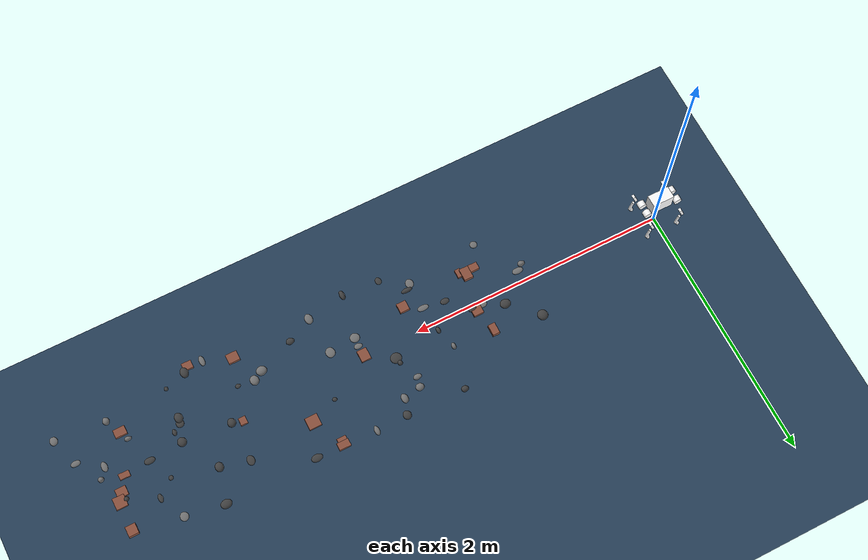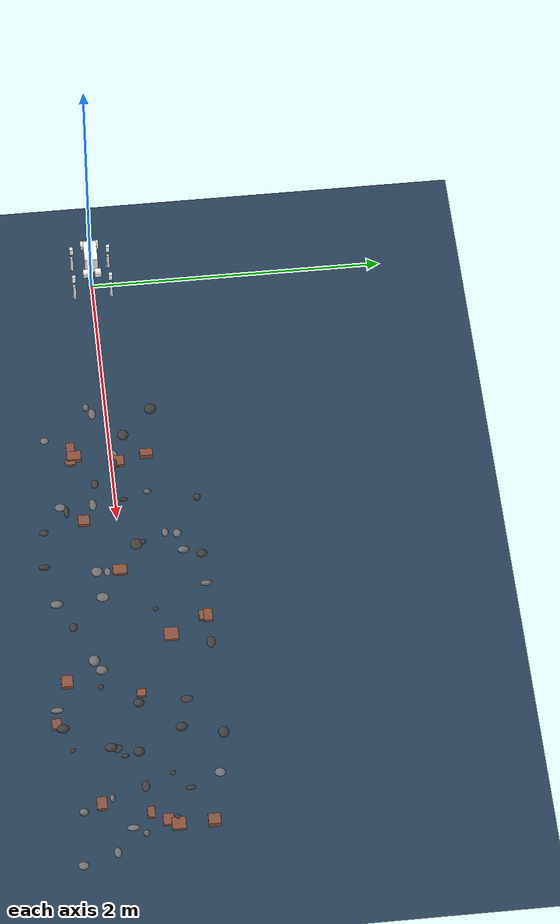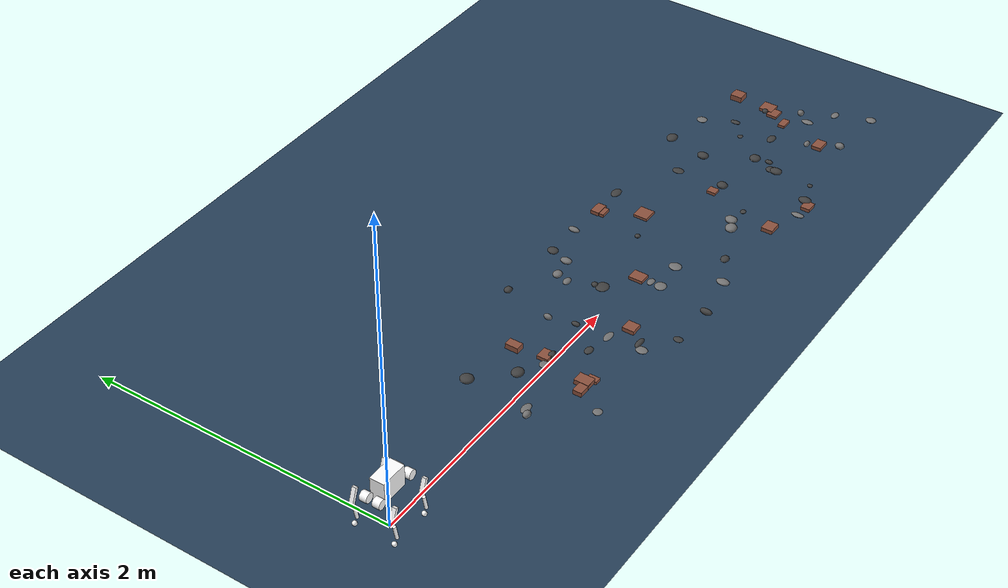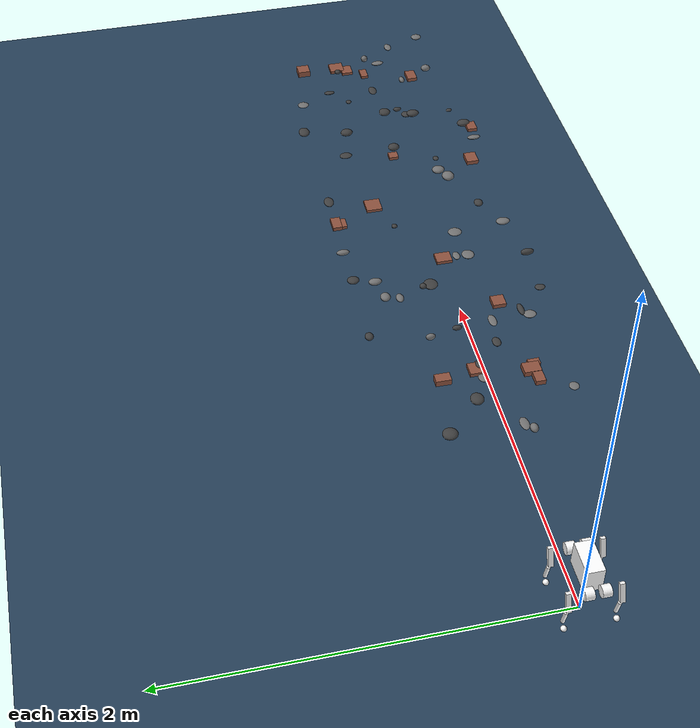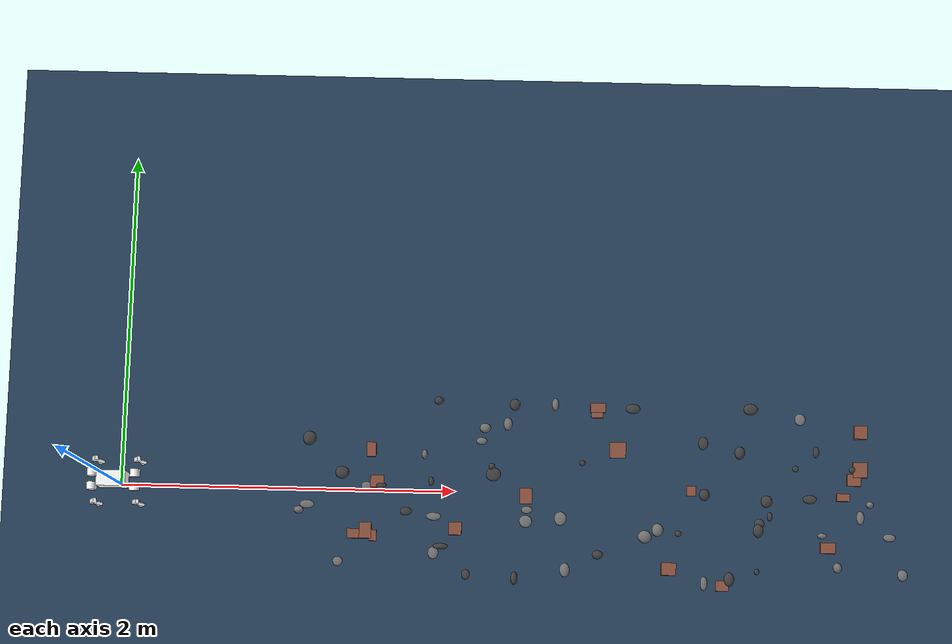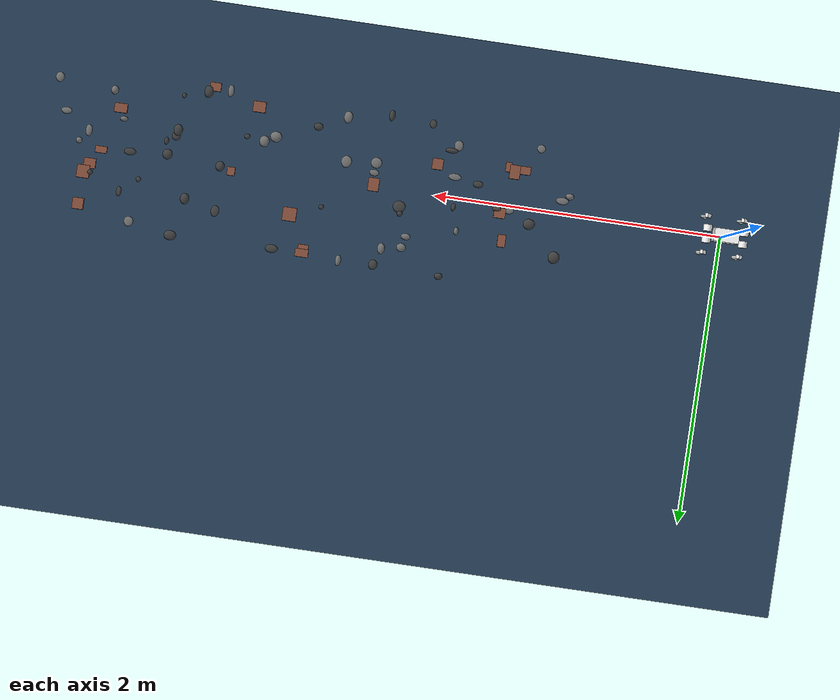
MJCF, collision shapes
<mujoco model="htdw_4438 scene debris stones">
  <include file="htdw_4438.xml"/>

  <statistic center="0 0 0.1" extent="0.8"/>

  <visual>
    <headlight diffuse="0.6 0.6 0.6" ambient="0.3 0.3 0.3" specular="0 0 0"/>
    <rgba haze="0.15 0.25 0.35 1"/>
  </visual>

  <asset>
    <texture type="skybox" builtin="gradient" rgb1="0.3 0.5 0.7" rgb2="0 0 0" width="512" height="3072"/>
    <texture type="2d" name="groundplane" builtin="checker" mark="edge" rgb1="0.2 0.3 0.4" rgb2="0.1 0.2 0.3"
      markrgb="0.8 0.8 0.8" width="300" height="300"/>
    <material name="groundplane" texture="groundplane" texuniform="true" texrepeat="5 5" reflectance="0.2"/>

    <material name="debris_stone" rgba="0.45 0.45 0.45 1" reflectance="0.05"/>
    <material name="debris_stone2" rgba="0.25 0.25 0.25 1" reflectance="0.05"/>
    <material name="debris_brick" rgba="0.55 0.32 0.24 1" reflectance="0.05"/>
  </asset>

  <worldbody>
    <light pos="0 0 1.5" dir="0 0 -1" directional="true"/>
    <geom name="floor" size="0 0 0.05" type="plane" material="groundplane"/>

    <!-- Cobble / stone field: lots of low ellipsoid bumps + a few bricks. -->
    <geom pos="2.230 0.110 0.010" type="ellipsoid" size="0.044 0.041 0.010" material="debris_stone2"/>
    <geom pos="1.815 0.221 0.019" type="ellipsoid" size="0.017 0.027 0.019" material="debris_stone"/>
    <geom pos="3.891 -0.108 0.012" type="ellipsoid" size="0.016 0.026 0.012" material="debris_stone2"/>
    <geom pos="1.472 0.023 0.007" type="ellipsoid" size="0.033 0.027 0.007" material="debris_stone"/>
    <geom pos="4.131 0.001 0.009" type="ellipsoid" size="0.042 0.025 0.009" material="debris_stone2"/>
    <geom pos="3.490 0.325 0.007" type="ellipsoid" size="0.029 0.039 0.007" material="debris_stone2"/>
    <geom pos="4.490 -0.025 0.020" type="ellipsoid" size="0.022 0.021 0.020" material="debris_stone"/>
    <geom pos="4.684 -0.441 0.011" type="ellipsoid" size="0.030 0.034 0.011" material="debris_stone"/>
    <geom pos="2.077 -0.492 0.007" type="ellipsoid" size="0.024 0.030 0.007" material="debris_stone2"/>
    <geom pos="3.829 -0.152 0.009" type="ellipsoid" size="0.030 0.030 0.009" material="debris_stone2"/>
    <geom pos="1.923 -0.328 0.012" type="ellipsoid" size="0.045 0.018 0.012" material="debris_stone2"/>
    <geom pos="4.434 -0.104 0.009" type="ellipsoid" size="0.023 0.040 0.009" material="debris_stone"/>
    <geom pos="2.667 -0.453 0.013" type="ellipsoid" size="0.030 0.042 0.013" material="debris_stone"/>
    <geom pos="4.169 0.286 0.008" type="ellipsoid" size="0.018 0.034 0.008" material="debris_stone2"/>
    <geom pos="2.367 -0.508 0.019" type="ellipsoid" size="0.020 0.039 0.019" material="debris_stone2"/>
    <geom pos="1.892 0.548 0.016" type="ellipsoid" size="0.028 0.024 0.016" material="debris_stone2"/>
    <geom pos="2.764 0.190 0.010" type="ellipsoid" size="0.018 0.017 0.010" material="debris_stone2"/>
    <geom pos="4.386 0.183 0.013" type="ellipsoid" size="0.020 0.019 0.013" material="debris_stone2"/>
    <geom pos="3.343 -0.221 0.007" type="ellipsoid" size="0.020 0.018 0.007" material="debris_stone2"/>
    <geom pos="2.435 -0.099 0.007" type="ellipsoid" size="0.033 0.022 0.007" material="debris_stone"/>
    <geom pos="1.116 -0.093 0.007" type="ellipsoid" size="0.044 0.025 0.007" material="debris_stone"/>
    <geom pos="2.156 0.309 0.012" type="ellipsoid" size="0.033 0.022 0.012" material="debris_stone"/>
    <geom pos="1.311 -0.430 0.007" type="ellipsoid" size="0.029 0.028 0.007" material="debris_stone"/>
    <geom pos="2.176 0.388 0.017" type="ellipsoid" size="0.033 0.029 0.017" material="debris_stone"/>
    <geom pos="2.637 -0.147 0.009" type="ellipsoid" size="0.036 0.041 0.009" material="debris_stone"/>
    <geom pos="3.498 -0.515 0.010" type="ellipsoid" size="0.021 0.042 0.010" material="debris_stone"/>
    <geom pos="1.323 0.101 0.018" type="ellipsoid" size="0.041 0.037 0.018" material="debris_stone2"/>
    <geom pos="1.858 0.059 0.013" type="ellipsoid" size="0.016 0.027 0.013" material="debris_stone2"/>
    <geom pos="2.429 -0.168 0.009" type="ellipsoid" size="0.038 0.037 0.009" material="debris_stone"/>
    <geom pos="3.821 -0.194 0.017" type="ellipsoid" size="0.031 0.040 0.017" material="debris_stone2"/>
    <geom pos="3.871 -0.018 0.017" type="ellipsoid" size="0.034 0.036 0.017" material="debris_stone2"/>
    <geom pos="3.498 0.013 0.018" type="ellipsoid" size="0.031 0.035 0.018" material="debris_stone2"/>
    <geom pos="4.294 -0.406 0.020" type="ellipsoid" size="0.026 0.030 0.020" material="debris_stone"/>
    <geom pos="2.352 0.534 0.014" type="ellipsoid" size="0.031 0.035 0.014" material="debris_stone2"/>
    <geom pos="1.880 -0.368 0.008" type="ellipsoid" size="0.031 0.037 0.008" material="debris_stone"/>
    <geom pos="2.596 0.540 0.014" type="ellipsoid" size="0.020 0.038 0.014" material="debris_stone"/>
    <geom pos="1.877 -0.150 0.006" type="ellipsoid" size="0.045 0.023 0.006" material="debris_stone"/>
    <geom pos="1.554 0.028 0.014" type="ellipsoid" size="0.036 0.021 0.014" material="debris_stone2"/>
    <geom pos="2.862 -0.358 0.014" type="ellipsoid" size="0.032 0.026 0.014" material="debris_stone2"/>
    <geom pos="4.046 0.183 0.006" type="ellipsoid" size="0.018 0.018 0.006" material="debris_stone2"/>
    <geom pos="1.120 0.304 0.019" type="ellipsoid" size="0.040 0.042 0.019" material="debris_stone2"/>
    <geom pos="2.312 0.415 0.016" type="ellipsoid" size="0.026 0.038 0.016" material="debris_stone"/>
    <geom pos="3.648 -0.488 0.018" type="ellipsoid" size="0.031 0.042 0.018" material="debris_stone2"/>
    <geom pos="3.709 0.271 0.018" type="ellipsoid" size="0.031 0.038 0.018" material="debris_stone2"/>
    <geom pos="3.143 -0.245 0.020" type="ellipsoid" size="0.041 0.037 0.020" material="debris_stone"/>
    <geom pos="4.204 -0.217 0.015" type="ellipsoid" size="0.028 0.017 0.015" material="debris_stone"/>
    <geom pos="3.814 -0.438 0.008" type="ellipsoid" size="0.015 0.018 0.008" material="debris_stone2"/>
    <geom pos="4.607 -0.218 0.008" type="ellipsoid" size="0.037 0.023 0.008" material="debris_stone"/>
    <geom pos="2.220 0.157 0.014" type="ellipsoid" size="0.019 0.020 0.014" material="debris_stone2"/>
    <geom pos="3.064 0.525 0.010" type="ellipsoid" size="0.044 0.029 0.010" material="debris_stone2"/>
    <geom pos="3.219 -0.203 0.017" type="ellipsoid" size="0.034 0.039 0.017" material="debris_stone"/>
    <geom pos="4.073 0.482 0.007" type="ellipsoid" size="0.032 0.035 0.007" material="debris_stone"/>
    <geom pos="1.068 -0.129 0.019" type="ellipsoid" size="0.029 0.022 0.019" material="debris_stone"/>
    <geom pos="1.710 -0.123 0.009" type="ellipsoid" size="0.035 0.024 0.009" material="debris_stone2"/>
    <geom pos="3.774 0.536 0.015" type="ellipsoid" size="0.043 0.034 0.015" material="debris_stone2"/>

    <geom pos="1.411 -0.263 0.015" type="box" size="0.048 0.028 0.015" material="debris_brick"/>
    <geom pos="4.396 0.122 0.009" type="box" size="0.041 0.035 0.009" material="debris_brick"/>
    <geom pos="1.495 0.242 0.018" type="box" size="0.028 0.043 0.018" material="debris_brick"/>
    <geom pos="2.975 0.272 0.009" type="box" size="0.048 0.047 0.009" material="debris_brick"/>
    <geom pos="4.331 0.017 0.009" type="box" size="0.040 0.023 0.009" material="debris_brick"/>
    <geom pos="2.853 0.525 0.012" type="box" size="0.046 0.028 0.012" material="debris_brick"/>
    <geom pos="4.236 -0.288 0.012" type="box" size="0.045 0.032 0.012" material="debris_brick"/>
    <geom pos="3.419 0.036 0.010" type="box" size="0.027 0.029 0.010" material="debris_brick"/>
    <geom pos="4.435 0.410 0.019" type="box" size="0.038 0.039 0.019" material="debris_brick"/>
    <geom pos="1.517 -0.272 0.010" type="box" size="0.021 0.033 0.010" material="debris_brick"/>
    <geom pos="1.534 0.052 0.012" type="box" size="0.040 0.036 0.012" material="debris_brick"/>
    <geom pos="2.428 -0.017 0.010" type="box" size="0.038 0.046 0.010" material="debris_brick"/>
    <geom pos="3.607 -0.527 0.011" type="box" size="0.038 0.030 0.011" material="debris_brick"/>
    <geom pos="2.008 -0.221 0.013" type="box" size="0.038 0.038 0.013" material="debris_brick"/>
    <geom pos="3.287 -0.434 0.013" type="box" size="0.044 0.037 0.013" material="debris_brick"/>
    <geom pos="2.848 0.495 0.010" type="box" size="0.036 0.029 0.010" material="debris_brick"/>
    <geom pos="4.433 0.184 0.010" type="box" size="0.044 0.045 0.010" material="debris_brick"/>
    <geom pos="1.471 -0.243 0.016" type="box" size="0.036 0.048 0.016" material="debris_brick"/>
  </worldbody>
</mujoco>

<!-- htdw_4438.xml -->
<mujoco model="htdw_4438">
    <compiler angle="radian" meshdir="../meshes" />
    <size njmax="500" nconmax="100" />

    <asset>
        <mesh name="base_link_simple" file="base_link_simple.STL" />
        <mesh name="FL_hip" file="FL_hip.STL" />
        <mesh name="FL_thigh" file="FL_thigh.STL" />
        <mesh name="FL_calf" file="FL_calf.STL" />
        <mesh name="FL_foot" file="FL_foot.STL" />
        <mesh name="FR_hip" file="FR_hip.STL" />
        <mesh name="FR_thigh" file="FR_thigh.STL" />
        <mesh name="FR_calf" file="FR_calf.STL" />
        <mesh name="FR_foot" file="FR_foot.STL" />
        <mesh name="RL_hip" file="RL_hip.STL" />
        <mesh name="RL_thigh" file="RL_thigh.STL" />
        <mesh name="RL_calf" file="RL_calf.STL" />
        <mesh name="RL_foot" file="RL_foot.STL" />
        <mesh name="RR_hip" file="RR_hip.STL" />
        <mesh name="RR_thigh" file="RR_thigh.STL" />
        <mesh name="RR_calf" file="RR_calf.STL" />
        <mesh name="RR_foot" file="RR_foot.STL" />
    </asset>

    <!-- 统一设置阻尼、摩擦力、碰撞解算参数 -->
    <default>
        <!-- IsaacGym/LeggedGym cfg.asset.armature = 0.005; 这里对齐以提升数值稳定性 -->
	        <!-- URDF 未显式设置关节被动阻尼；此处设为 0 以对齐 IsaacGym（被动阻尼主要由 PD 的 Kd 提供） -->
	        <joint limited="true" damping="0.0" frictionloss="0.0" armature="0.005"/>
        <!-- 原 solref=0.005 过硬，容易在接触+高频PD下抖动；改为更温和的接触时间常数 -->
        <geom contype="1" conaffinity="1" friction="0.8 0.05 0.05" solref="0.02 1"/>
    </default>

    <worldbody>
        <!-- Robot Base (Root Body) from Snippet -->
        <body name="robot" pos="0 0 0.3" quat="1 0 0 0">
            <joint name="float_base" type="free" limited="false"/>
	        <!-- 与 resources/robots/htdw_4438/urdf/htdw_4438.urdf 的 base_link 惯性对齐（避免 sim2sim gap） -->
	        <inertial pos="-0.00139370 0.00012462 0.01353999" quat="0.05699976 0.72222690 0.06363175 0.68636020" mass="2.68214792" diaginertia="0.01217432 0.01195068 0.00675497"/>
            <site name="imu" pos="-0.02557 0 0.04232" />

            <!-- Adding Visual Geoms from Original File to the Root Body -->
            <geom type="mesh" contype="0" conaffinity="0" group="1" rgba="1 1 1 1" mesh="base_link_simple" />
            <geom size="0.085 0.045 0.069" pos="0 0 0.025" type="box" rgba="1 1 1 1" />

            <!-- Front Left Leg -->
            <!-- Joint names changed to Uppercase to match actuators -->
            <body name="fl_hip" pos="0.0909 0.04 0">
                <inertial pos="0.0326958 0.00444394 -9.507e-05" quat="0.465966 0.463585 0.53558 0.530206" mass="0.292358" diaginertia="0.000412728 0.000405494 8.3118e-05" />
                <joint name="FL_hip_joint" pos="0 0 0" axis="1 0 0" limited="true" range="-0.9 0.9" />
                <geom type="mesh" contype="0" conaffinity="0" group="1" rgba="1 1 1 1" mesh="FL_hip" />
                <geom size="0.03 0.0225" pos="0.035 0 0" quat="0.505398 0.499971 0.499971 -0.494602" type="cylinder" rgba="1 1 1 1" />

                <body name="fl_thigh" pos="0.034 0.0254 0">
                    <inertial pos="-0.00137569 0.0379093 -0.0116534" quat="0.884178 0.465761 0.0354147 -0.00650016" mass="0.410408" diaginertia="0.00122804 0.000985868 0.000366426" />
                    <joint name="FL_thigh_joint" pos="0 0 0" axis="0 1 0" limited="true" range="-1.5 3.5" />
                    <geom type="mesh" contype="0" conaffinity="0" group="1" rgba="1 1 1 1" mesh="FL_thigh" />
                    <geom size="0.01 0.0125 0.05" pos="0.004 0.06 -0.045" quat="0.984727 0 0.174108 0" type="box" rgba="1 1 1 1" />

                    <body name="fl_calf" pos="0 0.0604 -0.12">
                        <inertial pos="0.0101367 -0.000182728 -0.0624887" quat="0.710874 -0.0477597 -0.04827 0.700034" mass="0.0469098" diaginertia="0.000213166 0.000209385 5.3017e-06" />
                        <joint name="FL_calf_joint" pos="0 0 0" axis="0 1 0" limited="true" range="-2.5 -1.2" />
                        <geom type="mesh" contype="0" conaffinity="0" group="1" rgba="1 1 1 1" mesh="FL_calf" />
                        <geom size="0.01 0.05" pos="0.013 0 -0.05" quat="0.995004 0 -0.0998334 0" type="cylinder" rgba="1 1 1 1" />

                        <!-- Foot Geoms -->
                        <geom pos="0.00206 6e-05 -0.13694" type="mesh" contype="0" conaffinity="0" group="1" rgba="1 1 1 1" mesh="FL_foot" />
                        <geom size="0.015" pos="0.00456 6e-05 -0.12424" rgba="1 1 1 1" />
                        <!-- Adding a site for possible contact sensing, though not strictly in the sensor snippet -->
                        <site name="FL_foot_site" pos="0.00456 6e-05 -0.12424" size="0.01" rgba="0 0 1 0.5"/>
                    </body>
                </body>
            </body>

            <!-- Front Right Leg -->
            <body name="fr_hip" pos="0.0909 -0.04 0">
                <inertial pos="0.0326958 -0.00444394 9.507e-05" quat="0.53558 0.530206 0.465966 0.463585" mass="0.292358" diaginertia="0.000412728 0.000405494 8.3118e-05" />
                <joint name="FR_hip_joint" pos="0 0 0" axis="1 0 0" limited="true" range="-0.9 0.9" />
                <geom type="mesh" contype="0" conaffinity="0" group="1" rgba="1 1 1 1" mesh="FR_hip" />
                <geom size="0.03 0.0225" pos="0.035 0 0" quat="0.505398 0.499971 0.499971 -0.494602" type="cylinder" rgba="1 1 1 1" />

                <body name="fr_thigh" pos="0.034 -0.0254 0">
                    <inertial pos="-0.00130371 -0.0379128 -0.0115569" quat="0.466339 0.884003 0.00461373 -0.0323373" mass="0.410408" diaginertia="0.0012278 0.000984249 0.000367077" />
                    <joint name="FR_thigh_joint" pos="0 0 0" axis="0 1 0" limited="true" range="-1.5 3.5" />
                    <geom type="mesh" contype="0" conaffinity="0" group="1" rgba="1 1 1 1" mesh="FR_thigh" />
                    <geom size="0.01 0.0125 0.05" pos="0.004 -0.06 -0.045" quat="0.984727 0 0.174108 0" type="box" rgba="1 1 1 1" />

                    <body name="fr_calf" pos="0 -0.0604 -0.12">
                        <inertial pos="0.0101597 1.52233e-05 -0.0626033" quat="0.698922 -0.0488767 -0.0472409 0.711961" mass="0.0469098" diaginertia="0.000213525 0.000209727 5.30063e-06" />
                        <joint name="FR_calf_joint" pos="0 0 0" axis="0 1 0" limited="true" range="-2.5 -1.2" />
                        <geom type="mesh" contype="0" conaffinity="0" group="1" rgba="1 1 1 1" mesh="FR_calf" />
                        <geom size="0.01 0.05" pos="0.013 0 -0.05" quat="0.995004 0 -0.0998334 0" type="cylinder" rgba="1 1 1 1" />

                        <geom pos="0.00206 6e-05 -0.13694" type="mesh" contype="0" conaffinity="0" group="1" rgba="1 1 1 1" mesh="FR_foot" />
                        <geom size="0.015" pos="0.00456 6e-05 -0.12424" rgba="1 1 1 1" />
                        <site name="FR_foot_site" pos="0.00456 6e-05 -0.12424" size="0.01" rgba="0 0 1 0.5"/>
                    </body>
                </body>
            </body>

            <!-- Rear Left Leg -->
            <body name="rl_hip" pos="-0.0909 0.04 0">
                <inertial pos="-0.0326958 0.00444394 9.507e-05" quat="0.530206 0.53558 0.463585 0.465966" mass="0.292358" diaginertia="0.000412728 0.000405494 8.3118e-05" />
                <joint name="RL_hip_joint" pos="0 0 0" axis="1 0 0" limited="true" range="-0.9 0.9" />
                <geom type="mesh" contype="0" conaffinity="0" group="1" rgba="1 1 1 1" mesh="RL_hip" />
                <geom size="0.03 0.0225" pos="-0.035 0 0" quat="0.505398 0.499971 0.499971 -0.494602" type="cylinder" rgba="1 1 1 1" />

                <body name="rl_thigh" pos="-0.034 0.0254 0">
                    <inertial pos="-0.00137569 0.0379093 -0.0116534" quat="0.884178 0.465761 0.0354147 -0.00650016" mass="0.410408" diaginertia="0.00122804 0.000985868 0.000366426" />
                    <joint name="RL_thigh_joint" pos="0 0 0" axis="0 1 0" limited="true" range="-1.5 3.5" />
                    <geom type="mesh" contype="0" conaffinity="0" group="1" rgba="1 1 1 1" mesh="RL_thigh" />
                    <geom size="0.01 0.0125 0.05" pos="0.004 0.06 -0.045" quat="0.984727 0 0.174108 0" type="box" rgba="1 1 1 1" />

                    <body name="rl_calf" pos="0 0.0604 -0.12">
                        <inertial pos="0.0095589 -0.000182728 -0.0624887" quat="0.709338 -0.0452838 -0.0455386 0.701937" mass="0.0469098" diaginertia="0.000213491 0.000208973 6.03985e-06" />
                        <joint name="RL_calf_joint" pos="0 0 0" axis="0 1 0" limited="true" range="-2.5 -1.2" />
                        <geom type="mesh" contype="0" conaffinity="0" group="1" rgba="1 1 1 1" mesh="RL_calf" />
                        <geom size="0.01 0.05" pos="0.013 0 -0.05" quat="0.995004 0 -0.0998334 0" type="cylinder" rgba="1 1 1 1" />

                        <geom pos="-0.00206 6e-05 -0.13694" type="mesh" contype="0" conaffinity="0" group="1" rgba="1 1 1 1" mesh="RL_foot" />
                        <geom size="0.015" pos="0.00044 6e-05 -0.12424" rgba="1 1 1 1" />
                        <site name="RL_foot_site" pos="0.00044 6e-05 -0.12424" size="0.01" rgba="0 0 1 0.5"/>
                    </body>
                </body>
            </body>

            <!-- Rear Right Leg -->
            <body name="rr_hip" pos="-0.0909 -0.04 0">
                <inertial pos="-0.0326958 -0.00444394 -9.507e-05" quat="0.463585 0.465966 0.530206 0.53558" mass="0.292358" diaginertia="0.000412728 0.000405494 8.3118e-05" />
                <joint name="RR_hip_joint" pos="0 0 0" axis="1 0 0" limited="true" range="-0.9 0.9" />
                <geom type="mesh" contype="0" conaffinity="0" group="1" rgba="1 1 1 1" mesh="RR_hip" />
                <geom size="0.03 0.0225" pos="-0.035 0 0" quat="0.505398 0.499971 0.499971 -0.494602" type="cylinder" rgba="1 1 1 1" />

                <body name="rr_thigh" pos="-0.034 -0.0254 0">
                    <inertial pos="-0.00130371 -0.0379128 -0.0115569" quat="0.466339 0.884003 0.00461373 -0.0323373" mass="0.410408" diaginertia="0.0012278 0.000984249 0.000367077" />
                    <joint name="RR_thigh_joint" pos="0 0 0" axis="0 1 0" limited="true" range="-1.5 3.5" />
                    <geom type="mesh" contype="0" conaffinity="0" group="1" rgba="1 1 1 1" mesh="RR_thigh" />
                    <geom size="0.01 0.0125 0.05" pos="0.004 -0.06 -0.045" quat="0.984727 0 0.174108 0" type="box" rgba="1 1 1 1" />

                    <body name="rr_calf" pos="0 -0.0604 -0.12">
                        <inertial pos="0.00958187 1.52233e-05 -0.0626033" quat="0.698998 -0.0462627 -0.044667 0.712227" mass="0.0469098" diaginertia="0.000213852 0.000209314 6.03965e-06" />
                        <joint name="RR_calf_joint" pos="0 0 0" axis="0 1 0" limited="true" range="-2.5 -1.2" />
                        <geom type="mesh" contype="0" conaffinity="0" group="1" rgba="1 1 1 1" mesh="RR_calf" />
                        <geom size="0.01 0.05" pos="0.013 0 -0.05" quat="0.995004 0 -0.0998334 0" type="cylinder" rgba="1 1 1 1" />

                        <geom pos="-0.00206 6e-05 -0.13694" type="mesh" contype="0" conaffinity="0" group="1" rgba="1 1 1 1" mesh="RR_foot" />
                        <geom size="0.015" pos="0.00044 6e-05 -0.12424" rgba="1 1 1 1" />
                        <site name="RR_foot_site" pos="0.00044 6e-05 -0.12424" size="0.01" rgba="0 0 1 0.5"/>
                    </body>
                </body>
            </body>
        </body>
    </worldbody>

    <!-- Actuator Section from Snippet -->
    <actuator>
        <motor name="FL_hip_joint" joint="FL_hip_joint" gear="1" ctrllimited="true" ctrlrange="-10 10"/>
        <motor name="FL_thigh_joint" joint="FL_thigh_joint" gear="1" ctrllimited="true" ctrlrange="-10 10"/>
        <motor name="FL_calf_joint" joint="FL_calf_joint" gear="1" ctrllimited="true" ctrlrange="-10 10"/>

        <motor name="FR_hip_joint" joint="FR_hip_joint" gear="1" ctrllimited="true" ctrlrange="-10 10"/>
        <motor name="FR_thigh_joint" joint="FR_thigh_joint" gear="1" ctrllimited="true" ctrlrange="-10 10"/>
        <motor name="FR_calf_joint" joint="FR_calf_joint" gear="1" ctrllimited="true" ctrlrange="-10 10"/>

        <motor name="RL_hip_joint" joint="RL_hip_joint" gear="1" ctrllimited="true" ctrlrange="-10 10"/>
        <motor name="RL_thigh_joint" joint="RL_thigh_joint" gear="1" ctrllimited="true" ctrlrange="-10 10"/>
        <motor name="RL_calf_joint" joint="RL_calf_joint" gear="1" ctrllimited="true" ctrlrange="-10 10"/>

        <motor name="RR_hip_joint" joint="RR_hip_joint" gear="1" ctrllimited="true" ctrlrange="-10 10"/>
        <motor name="RR_thigh_joint" joint="RR_thigh_joint" gear="1" ctrllimited="true" ctrlrange="-10 10"/>
        <motor name="RR_calf_joint" joint="RR_calf_joint" gear="1" ctrllimited="true" ctrlrange="-10 10"/>
    </actuator>

    <!-- Sensor Section from Snippet -->
    <sensor>
        <actuatorpos name='FR_hip_joint_p'  actuator='FR_hip_joint' user='13'/>
        <actuatorpos name='FR_thigh_joint_p'  actuator='FR_thigh_joint' user='13'/>
        <actuatorpos name='FR_calf_joint_p'  actuator='FR_calf_joint' user='13'/>
        <actuatorpos name='FL_hip_joint_p'  actuator='FL_hip_joint' user='13'/>
        <actuatorpos name='FL_thigh_joint_p'  actuator='FL_thigh_joint' user='13'/>
        <actuatorpos name='FL_calf_joint_p'  actuator='FL_calf_joint' user='13'/>
        <actuatorpos name='RR_hip_joint_p'  actuator='RR_hip_joint' user='13'/>
        <actuatorpos name='RR_thigh_joint_p'  actuator='RR_thigh_joint' user='13'/>
        <actuatorpos name='RR_calf_joint_p'  actuator='RR_calf_joint' user='13'/>
        <actuatorpos name='RL_hip_joint_p'  actuator='RL_hip_joint' user='13'/>
        <actuatorpos name='RL_thigh_joint_p'  actuator='RL_thigh_joint' user='13'/>
        <actuatorpos name='RL_calf_joint_p'  actuator='RL_calf_joint' user='13'/>

        <actuatorvel name='FR_hip_joint_v'  actuator='FR_hip_joint' user='13'/>
        <actuatorvel name='FR_thigh_joint_v'  actuator='FR_thigh_joint' user='13'/>
        <actuatorvel name='FR_calf_joint_v'  actuator='FR_calf_joint' user='13'/>
        <actuatorvel name='FL_hip_joint_v'  actuator='FL_hip_joint' user='13'/>
        <actuatorvel name='FL_thigh_joint_v'  actuator='FL_thigh_joint' user='13'/>
        <actuatorvel name='FL_calf_joint_v'  actuator='FL_calf_joint' user='13'/>
        <actuatorvel name='RR_hip_joint_v'  actuator='RR_hip_joint' user='13'/>
        <actuatorvel name='RR_thigh_joint_v'  actuator='RR_thigh_joint' user='13'/>
        <actuatorvel name='RR_calf_joint_v'  actuator='RR_calf_joint' user='13'/>
        <actuatorvel name='RL_hip_joint_v'  actuator='RL_hip_joint' user='13'/>
        <actuatorvel name='RL_thigh_joint_v'  actuator='RL_thigh_joint' user='13'/>
        <actuatorvel name='RL_calf_joint_v'  actuator='RL_calf_joint' user='13'/>

        <actuatorfrc name='FR_hip_joint_f'  actuator='FR_hip_joint'  user='13' noise='1e-3'/>
        <actuatorfrc name='FR_thigh_joint_f'  actuator='FR_thigh_joint'  user='13' noise='1e-3'/>
        <actuatorfrc name='FR_calf_joint_f'  actuator='FR_calf_joint'  user='13' noise='1e-3'/>
        <actuatorfrc name='FL_hip_joint_f'  actuator='FL_hip_joint'  user='13' noise='1e-3'/>
        <actuatorfrc name='FL_thigh_joint_f'  actuator='FL_thigh_joint'  user='13' noise='1e-3'/>
        <actuatorfrc name='FL_calf_joint_f'  actuator='FL_calf_joint'  user='13' noise='1e-3'/>
        <actuatorfrc name='RR_hip_joint_f'  actuator='RR_hip_joint'  user='13' noise='1e-3'/>
        <actuatorfrc name='RR_thigh_joint_f'  actuator='RR_thigh_joint'  user='13' noise='1e-3'/>
        <actuatorfrc name='RR_calf_joint_f'  actuator='RR_calf_joint'  user='13' noise='1e-3'/>
        <actuatorfrc name='RL_hip_joint_f'  actuator='RL_hip_joint'  user='13' noise='1e-3'/>
        <actuatorfrc name='RL_thigh_joint_f'  actuator='RL_thigh_joint'  user='13' noise='1e-3'/>
        <actuatorfrc name='RL_calf_joint_f'  actuator='RL_calf_joint'  user='13' noise='1e-3'/>

        <framequat     name='orientation' objtype='site' noise='0.001' objname='imu'/>
        <framepos      name='position' objtype='site' noise='0.001' objname='imu'/>
        <gyro          name='angular-velocity'    site='imu' noise='0.005' cutoff='34.9'/>
        <velocimeter   name='linear-velocity'     site='imu' noise='0.001' cutoff='30'/>
        <accelerometer name='linear-acceleration' site='imu' noise='0.005' cutoff='157'/>
        <magnetometer  name='magnetometer'        site='imu'/>
    </sensor>
</mujoco>
